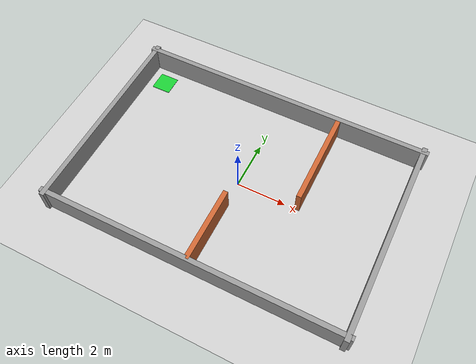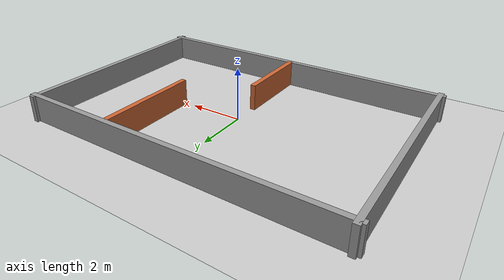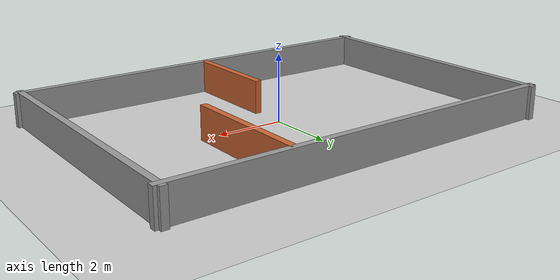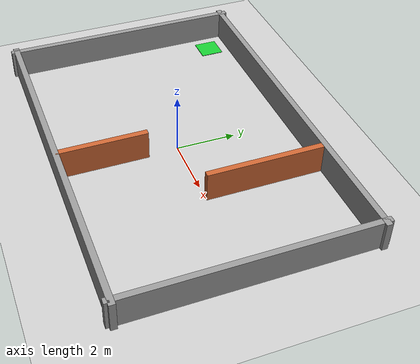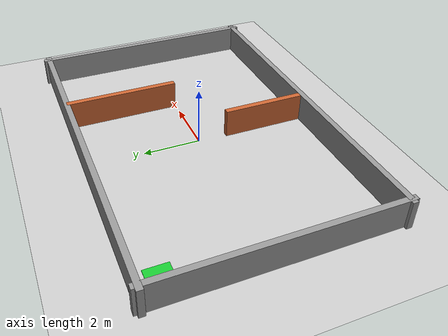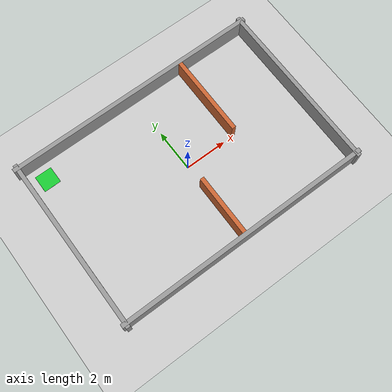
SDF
<?xml version="1.0"?>
<sdf version="1.6">
  <world name="bip_world">
    <include><uri>model://ground_plane</uri></include>
    <include><uri>model://sun</uri></include>

    <!-- IMPORTANT: these walls must stay in sync with
         bip_navigation/config/environment.yaml -->

    <model name="wall_top"><static>true</static>
      <pose>0 4 0.5 0 0 0</pose>
      <link name="l"><collision name="c"><geometry><box><size>12.4 0.2 1.0</size></box></geometry></collision>
      <visual name="v"><geometry><box><size>12.4 0.2 1.0</size></box></geometry>
      <material><ambient>0.6 0.6 0.6 1</ambient><diffuse>0.6 0.6 0.6 1</diffuse></material></visual></link>
    </model>

    <model name="wall_bottom"><static>true</static>
      <pose>0 -4 0.5 0 0 0</pose>
      <link name="l"><collision name="c"><geometry><box><size>12.4 0.2 1.0</size></box></geometry></collision>
      <visual name="v"><geometry><box><size>12.4 0.2 1.0</size></box></geometry>
      <material><ambient>0.6 0.6 0.6 1</ambient><diffuse>0.6 0.6 0.6 1</diffuse></material></visual></link>
    </model>

    <model name="wall_left"><static>true</static>
      <pose>-6 0 0.5 0 0 0</pose>
      <link name="l"><collision name="c"><geometry><box><size>0.2 8.4 1.0</size></box></geometry></collision>
      <visual name="v"><geometry><box><size>0.2 8.4 1.0</size></box></geometry>
      <material><ambient>0.6 0.6 0.6 1</ambient><diffuse>0.6 0.6 0.6 1</diffuse></material></visual></link>
    </model>

    <model name="wall_right"><static>true</static>
      <pose>6 0 0.5 0 0 0</pose>
      <link name="l"><collision name="c"><geometry><box><size>0.2 8.4 1.0</size></box></geometry></collision>
      <visual name="v"><geometry><box><size>0.2 8.4 1.0</size></box></geometry>
      <material><ambient>0.6 0.6 0.6 1</ambient><diffuse>0.6 0.6 0.6 1</diffuse></material></visual></link>
    </model>

    <model name="wall_inner_a"><static>true</static>
      <pose>0 -2.5 0.5 0 0 0</pose>
      <link name="l"><collision name="c"><geometry><box><size>0.2 3.0 1.0</size></box></geometry></collision>
      <visual name="v"><geometry><box><size>0.2 3.0 1.0</size></box></geometry>
      <material><ambient>0.8 0.4 0.2 1</ambient><diffuse>0.8 0.4 0.2 1</diffuse></material></visual></link>
    </model>

    <model name="wall_inner_b"><static>true</static>
      <pose>2.5 2.0 0.5 0 0 0</pose>
      <link name="l"><collision name="c"><geometry><box><size>0.2 4.0 1.0</size></box></geometry></collision>
      <visual name="v"><geometry><box><size>0.2 4.0 1.0</size></box></geometry>
      <material><ambient>0.8 0.4 0.2 1</ambient><diffuse>0.8 0.4 0.2 1</diffuse></material></visual></link>
    </model>

    <!-- charging dock marker (visual only, no collision) -->
    <model name="dock"><static>true</static>
      <pose>-5.2 3.2 0.01 0 0 0</pose>
      <link name="l"><visual name="v"><geometry><box><size>0.8 0.8 0.02</size></box></geometry>
      <material><ambient>0.1 0.8 0.2 1</ambient><diffuse>0.1 0.8 0.2 1</diffuse></material></visual></link>
    </model>

    <physics type="ode">
      <real_time_update_rate>1000</real_time_update_rate>
      <max_step_size>0.001</max_step_size>
    </physics>
  </world>
</sdf>
